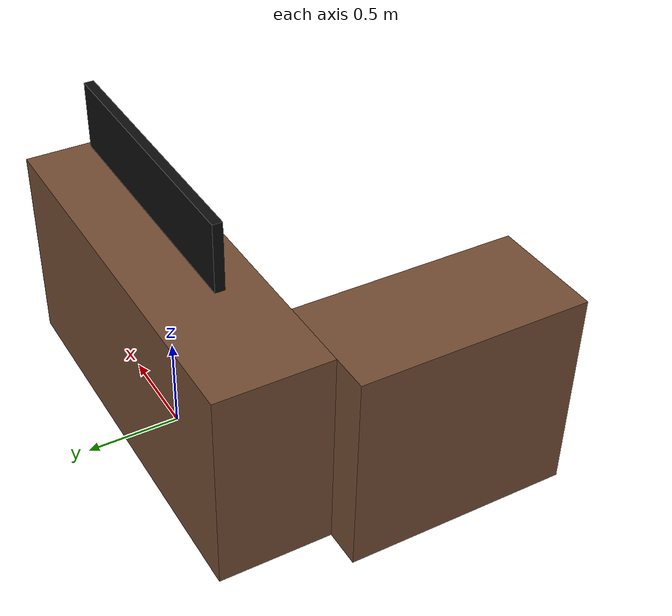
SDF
<?xml version="1.0"?>

<sdf version="1.10">

  <model name="reception_desk">

    <static>true</static>

    <link name="reception_link">

      <!-- FRONT COUNTER               -->

      <collision name="front_collision">
        <pose>0 0 0.55 0 0 0</pose>
        <geometry>
          <box>
            <size>2.2 0.6 1.1</size>
          </box>
        </geometry>
      </collision>

      <visual name="front_visual">
        <pose>0 0 0.55 0 0 0</pose>
        <geometry>
          <box>
            <size>2.2 0.6 1.1</size>
          </box>
        </geometry>
        <material>
          <ambient>0.45 0.3 0.2 1</ambient>
          <diffuse>0.45 0.3 0.2 1</diffuse>
          <specular>0.2 0.2 0.2 1</specular>
        </material>
      </visual>

      <!-- SIDE RETURN                 -->

      <collision name="return_collision">
        <pose>-1.0 -0.9 0.55 0 0 0</pose>
        <geometry>
          <box>
            <size>0.6 1.2 1.1</size>
          </box>
        </geometry>
      </collision>

      <visual name="return_visual">
        <pose>-1.0 -0.9 0.55 0 0 0</pose>
        <geometry>
          <box>
            <size>0.6 1.2 1.1</size>
          </box>
        </geometry>
        <material>
          <ambient>0.45 0.3 0.2 1</ambient>
          <diffuse>0.45 0.3 0.2 1</diffuse>
          <specular>0.2 0.2 0.2 1</specular>
        </material>
      </visual>

      <!-- NAMEPLATE SIGN              -->

      <visual name="nameplate_visual">
        <pose>0 0.05 1.5 0 0 0</pose>
        <geometry>
          <box>
            <size>1.4 0.05 0.35</size>
          </box>
        </geometry>
        <material>
          <ambient>0.05 0.05 0.05 1</ambient>
          <diffuse>0.05 0.05 0.05 1</diffuse>
          <emissive>0.1 0.4 0.5 1</emissive>
        </material>
      </visual>

    </link>

  </model>

</sdf>
